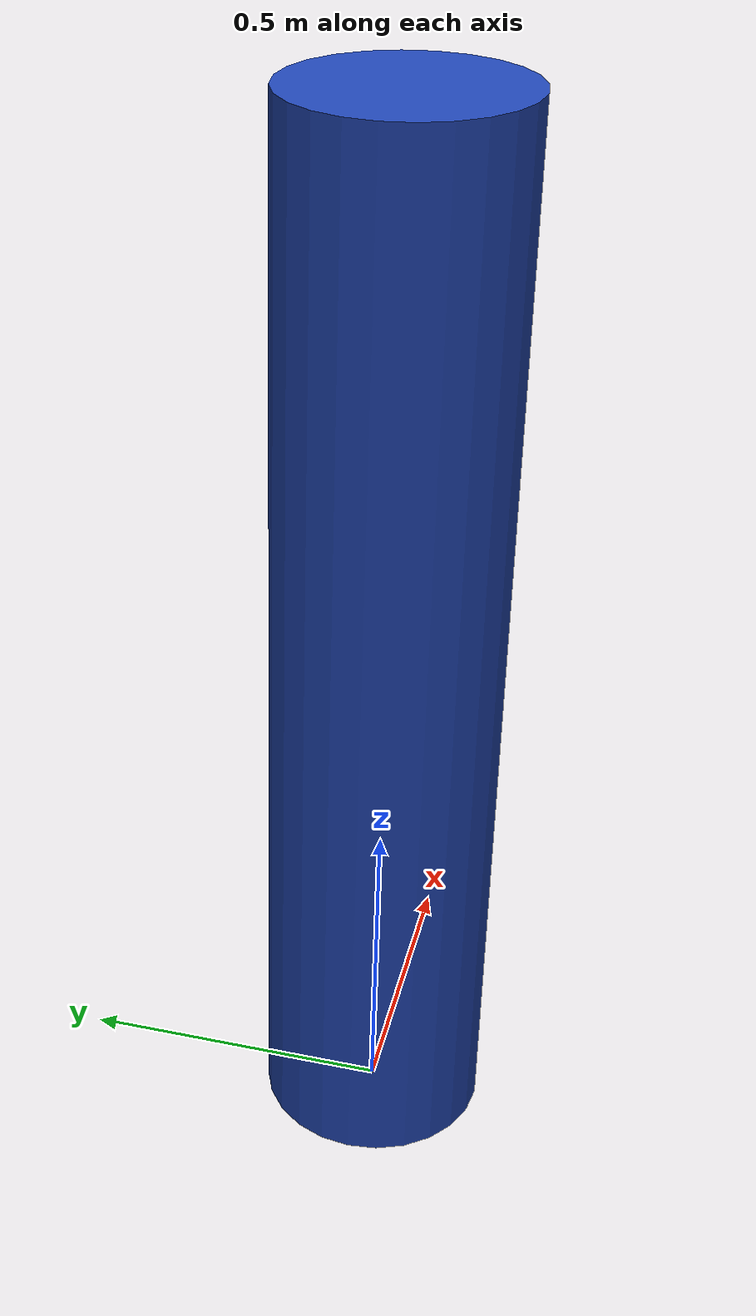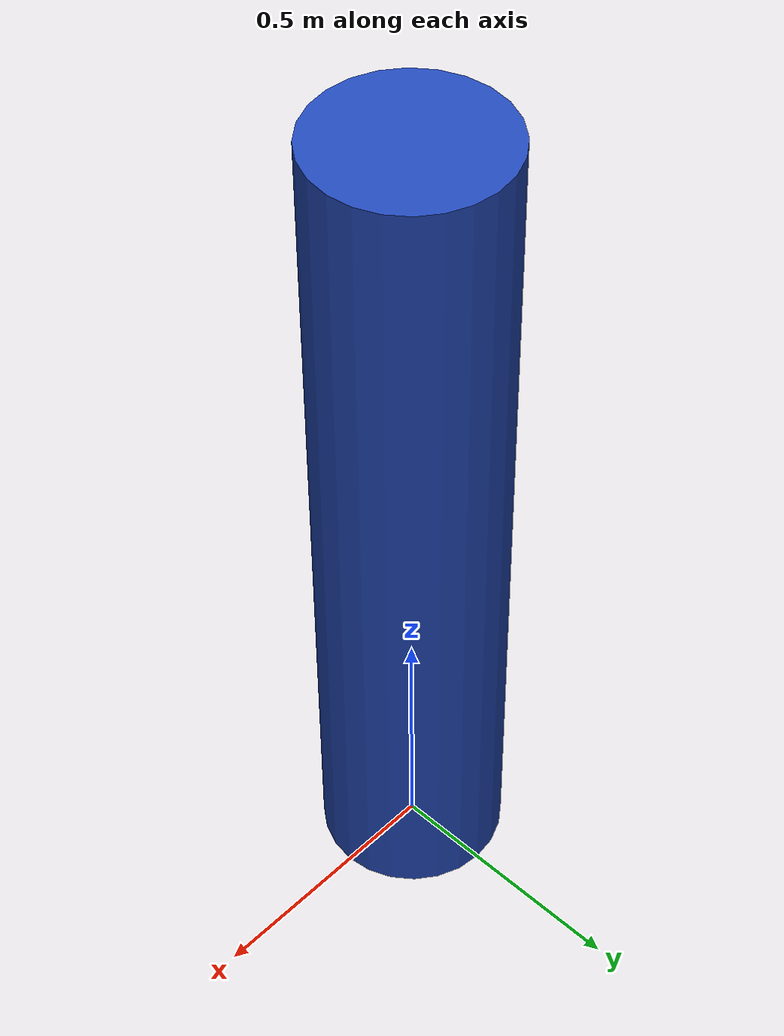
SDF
<?xml version="1.0"?>
<sdf version="1.9">
  <model name="bv_walking_person">
    <static>true</static>
    <link name="body">
      <pose>0 0 0.85 0 0 0</pose>
      <collision name="collision">
        <geometry>
          <cylinder><radius>0.18</radius><length>1.7</length></cylinder>
        </geometry>
      </collision>
      <visual name="visual">
        <geometry>
          <cylinder><radius>0.18</radius><length>1.7</length></cylinder>
        </geometry>
        <material>
          <diffuse>0.13 0.28 0.72 1</diffuse>
        </material>
      </visual>
    </link>
  </model>
</sdf>
